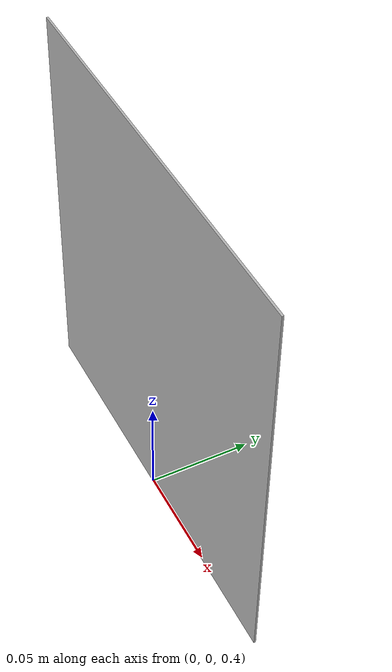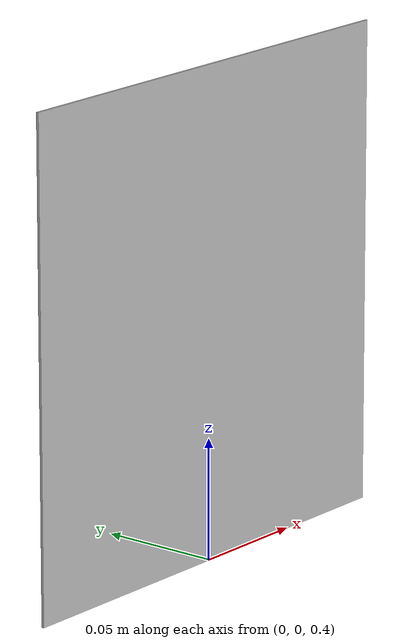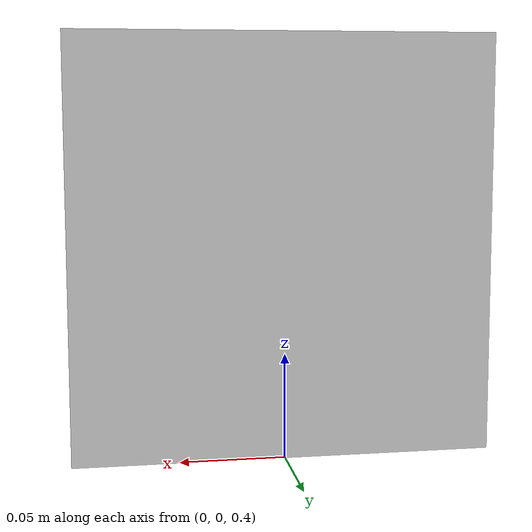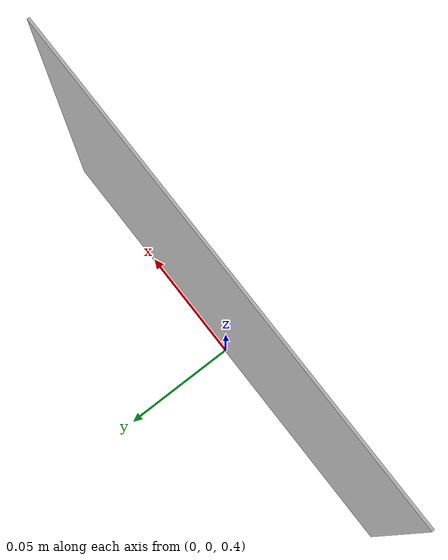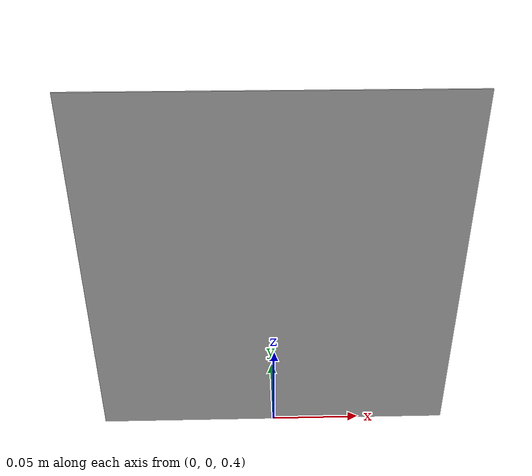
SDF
<?xml version="1.0"?>
<sdf version="1.7">

    <model name="maker_tile_2">
        <static>true</static>
        <link name="link">
            <pose>0 0 0.5 0 0 0</pose>
            <collision name="collision">
                <geometry>
                    <box>
                        <size>0.2 0.001 0.2</size>
                    </box>
                </geometry>
            </collision>

            <visual name="visual">
                <cast_shadows>false</cast_shadows>
                <geometry>
                    <box>
                        <size>0.2 0.001 0.2</size>
                    </box>
                </geometry>
                <material>
                    <script>
                        <uri>model://marker2/materials/scripts</uri>
                        <uri>model://marker2/materials/textures</uri>
                        <name>vrc/markerMaterial2</name>
                    </script>
                </material>
            </visual>
        </link>
    </model>

</sdf>
